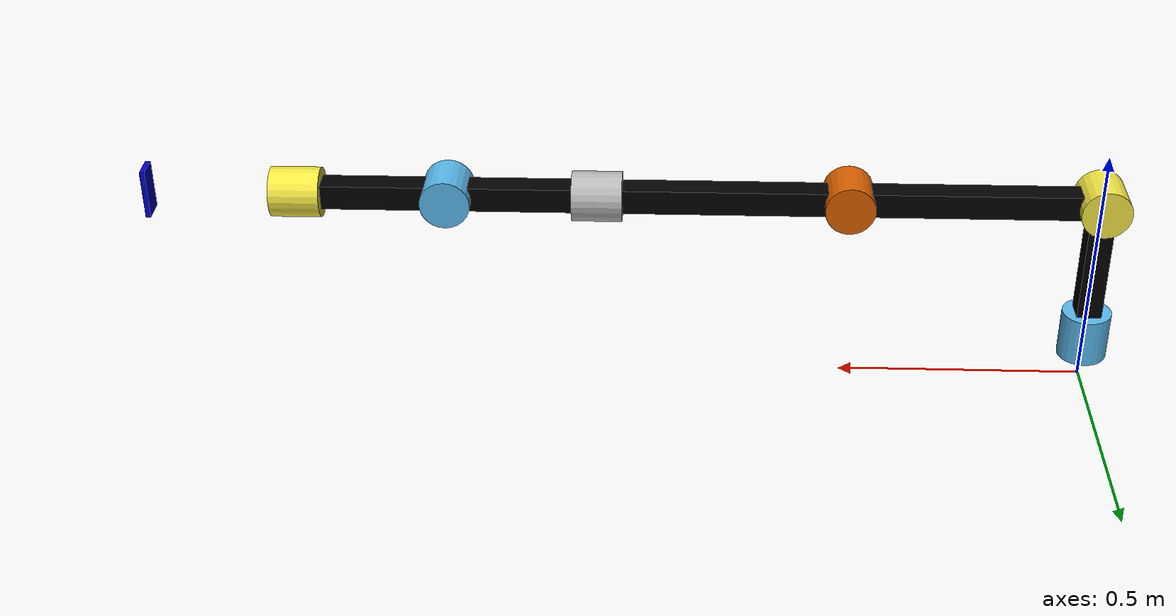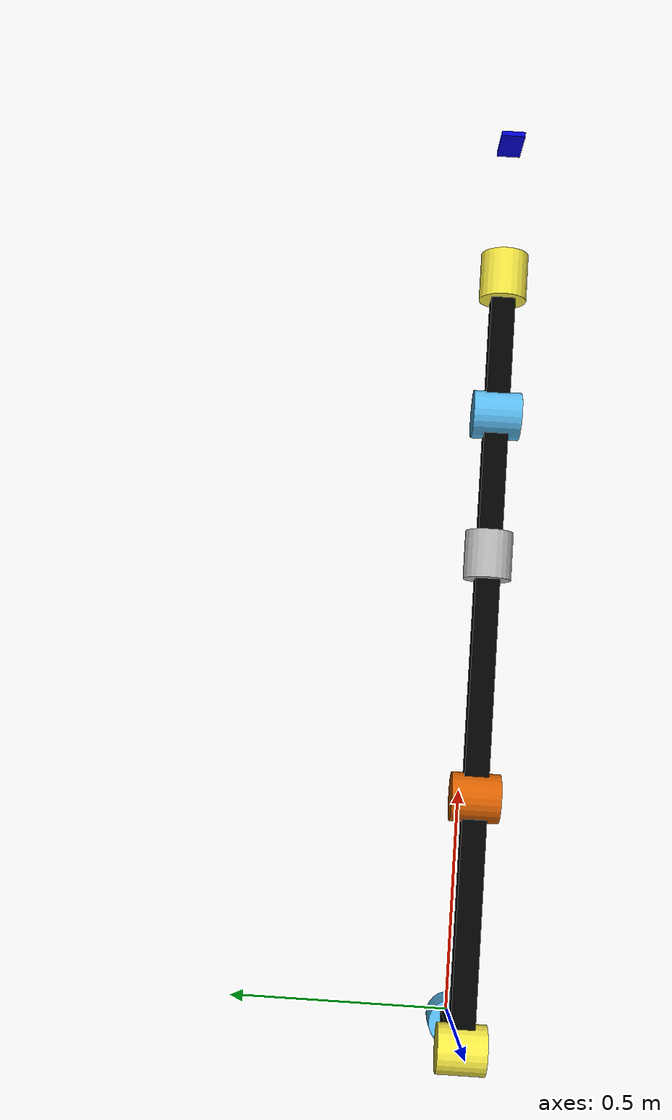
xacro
<?xml version="1.0"?>
<!-- Revolute-Revolute Manipulator -->
<robot name="my_robotic_arm" xmlns:xacro="http://www.ros.org/wiki/xacro">
    <material name="black">
        <color rgba="0.0 0.0 0.0 1.0"/>
    </material>

    <material name="blue">
        <color rgba="0.0 0.0 0.8 1.0"/>
    </material>

    <material name="green">
        <color rgba="0.0 0.8 0.0 1.0"/>
    </material>
    <material name="darkgreen">
        <color rgba="0.0 0.3 0.0 1.0"/>
    </material>

    <material name="gray">
        <color rgba="0.7 0.7 0.7 1.0"/>
    </material>

    <material name="darkgray">
        <color rgba="0.3 0.3 0.3 1.0"/>
    </material>

    <material name="red">
        <color rgba="0.8 0.0 0.0 1.0"/>
    </material>

    <material name="white">
        <color rgba="1.0 1.0 1.0 1.0"/>
    </material>

    <material name="yellow">
        <color rgba="0.8 0.8 0.0 1.0"/>
    </material>
    <!-- Constants -->
    <xacro:property name="deg_to_rad" value="0.01745329251994329577"/>
    <xacro:property name="M_PI" value="3.141592654"/>

    <xacro:property name="joint_radius" value="0.05"/>
    <xacro:property name="joint_height" value="0.1"/>

    <xacro:property name="width" value="0.05"/>
    <xacro:property name="l1" value="0.3"/>
    <xacro:property name="l2" value="0.5"/>
    <xacro:property name="l3" value="0.5"/>
    <xacro:property name="l4" value="0.3"/>
    <xacro:property name="l5" value="0.3"/>
    <xacro:property name="l6" value="0.3"/>

    <xacro:property name="end_ball_radius" value="0.025"/>

    <!-- Used for fixing robot to Gazebo 'link 1' -->
    <link name="world"/>
    <joint name="j1" type="revolute">
        <origin xyz="0 0 0.1" rpy="0 0 0"/>
        <parent link="world"/>
        <child link="joint1"/>
        <axis xyz="0 0 1"/>
        <limit velocity="5.0" effort="100" lower="${-pi*0.95}" upper="${pi*0.95}"/>
        <dynamics damping="0.7"/>
    </joint>
    <link name="joint1">
        <collision>
            <origin xyz="0 0 ${0/2}" rpy="0 0 0"/>
            <geometry>
                <cylinder length="${joint_height}" radius="${joint_radius}" />
            </geometry>
        </collision>
        <visual>
            <origin xyz="0 0 ${0/2}" rpy="0 0 0"/>
            <geometry>
                <cylinder length="${joint_height}" radius="${joint_radius}" />
            </geometry>
        </visual>
        <inertial>
            <origin xyz="0.0 0.00000 0.0" rpy="0 0 0"/>
            <mass value="0.5"/>
            <inertia ixx="1.0" ixy="0.0" ixz="0.0" iyy="1.0" iyz="0.0" izz="1.0" />
        </inertial>
    </link>
    <joint name="link1_fix" type="fixed">
        <origin xyz="0 0 0" rpy="0 0 0"/>
        <parent link="joint1"/>
        <child link="link1"/>
    </joint>
    <link name="link1">
        <collision>
            <origin xyz="0 0 ${l1/2}" rpy="0 0 0"/>
            <geometry>
                <box size="${width} ${width} ${l1}" />
            </geometry>
        </collision>
        <visual>
            <origin xyz="0 0 ${l1/2}" rpy="0 0 0"/>
            <geometry>
                <box size="${width} ${width} ${l1}"/>
            </geometry>
            <material name="black"/>
        </visual>
        <inertial>
            <origin xyz="0.0 0.00000 0.0" rpy="0 0 0"/>
            <mass value="0.5"/>
            <inertia ixx="1.0" ixy="0.0" ixz="0.0" iyy="1.0" iyz="0.0" izz="1.0" />
        </inertial>
    </link>

    <joint name="j2" type="revolute">
        <origin xyz="0 0 ${l1}" rpy="${0.5*pi} ${-0.0*pi} ${pi*0.0}"/>
        <parent link="joint1"/>
        <child link="joint2"/>
        <axis xyz="0 0 1 "/>
        <limit velocity="5.0" effort="100" lower="${-pi*0.95}" upper="${pi*0.95}"/>
        <dynamics damping="0.7"/>
    </joint>
    <link name="joint2">
        <collision>
            <origin xyz=" 0 0 ${0/2}" rpy="0 ${-pi*0} 0"/>
            <geometry>
                <cylinder length="${joint_height}" radius="${joint_radius}" />
            </geometry>
        </collision>
        <visual>
            <origin xyz="0 0 ${0/2} " rpy="0 ${-pi*0} 0"/>
            <geometry>
                <cylinder length="${joint_height}" radius="${joint_radius}" />
            </geometry>
        </visual>
        <inertial>
            <origin xyz="0.0 0.00000 0.0" rpy="0 0 0"/>
            <mass value="0.5"/>
            <inertia ixx="1.0" ixy="0.0" ixz="0.0" iyy="1.0" iyz="0.0" izz="1.0" />
        </inertial>
    </link>
    <joint name="link2_fix" type="fixed">
        <origin xyz="0 0 0" rpy="0 0 0"/>
        <parent link="joint2"/>
        <child link="link2"/>
    </joint>
    <link name="link2">
        <collision>
            <origin xyz="0 ${l2/2} 0 " rpy="0 0 0"/>
            <geometry>
                <box size="${width} ${l2} ${width}" />
            </geometry>
        </collision>
        <visual>
            <origin xyz="${l2/2} 0 0 " rpy="0 0 0"/>
            <geometry>
                <box size="${l2} ${width} ${width}"/>
            </geometry>
            <material name="black"/>
        </visual>
        <inertial>
            <origin xyz="0.0 0.00000 0.0" rpy="0 0 0"/>
            <mass value="0.5"/>
            <inertia ixx="1.0" ixy="0.0" ixz="0.0" iyy="1.0" iyz="0.0" izz="1.0" />
        </inertial>
    </link>

    <joint name="j3" type="revolute">
        <origin xyz="${l2} 0 0" rpy="${pi*0.0} ${pi*0.0} ${pi*0.0}"/>
        <parent link="joint2"/>
        <child link="joint3"/>
        <axis xyz="0 0 1"/>
        <limit velocity="5.0" effort="100" lower="${-pi*0.95}" upper="${pi*0.95}"/>
        <dynamics damping="0.7"/>
    </joint>
    <link name="joint3">
        <collision>
            <origin xyz="0 ${0/2} 0" rpy="0 ${-pi*0} 0"/>
            <geometry>
                <cylinder length="${joint_height}" radius="${joint_radius}" />
            </geometry>
        </collision>
        <visual>
            <origin xyz="0 ${0/2}  0" rpy="0 ${-pi*0} 0"/>
            <geometry>
                <cylinder length="${joint_height}" radius="${joint_radius}" />
            </geometry>
        </visual>
        <inertial>
            <origin xyz="0.0 0.00000 0.0" rpy="0 0 0"/>
            <mass value="0.5"/>
            <inertia ixx="1.0" ixy="0.0" ixz="0.0" iyy="1.0" iyz="0.0" izz="1.0" />
        </inertial>
    </link>
    <joint name="link3_fix" type="fixed">
        <origin xyz="0 0 0" rpy="0 0 0"/>
        <parent link="joint3"/>
        <child link="link3"/>
    </joint>
    <link name="link3">
        <collision>
            <origin xyz="${l3/2} 0 0 " rpy="0 0 0"/>
            <geometry>
                <box size="${l3} ${width} ${width}" />
            </geometry>
        </collision>
        <visual>
            <origin xyz="${l3/2} 0 0 " rpy="0 0 0"/>
            <geometry>
                <box size="${l3} ${width} ${width}"/>
            </geometry>
            <material name="black"/>
        </visual>
        <inertial>
            <origin xyz="0.0 0.00000 0.0" rpy="0 0 0"/>
            <mass value="0.5"/>
            <inertia ixx="1.0" ixy="0.0" ixz="0.0" iyy="1.0" iyz="0.0" izz="1.0" />
        </inertial>
    </link>

    <joint name="j4" type="revolute">
        <origin xyz="${l3} 0 0" rpy="${pi*0.5} ${pi*0} ${pi*0.5}"/>
        <parent link="joint3"/>
        <child link="joint4"/>
        <axis xyz="0 0 1"/>
        <limit velocity="5.0" effort="100" lower="${-pi*0.95}" upper="${pi*0.95}"/>
        <dynamics damping="0.7"/>
    </joint>
    <link name="joint4">
        <collision>
            <origin xyz="0 ${0/2} 0" rpy="${pi*0.0} ${pi*0.0} ${pi*0.0}"/>
            <geometry>
                <cylinder length="${joint_height}" radius="${joint_radius}" />
            </geometry>
        </collision>
        <visual>
            <origin xyz="0 ${0/2}  0" rpy="0 ${-pi*0} 0"/>
            <geometry>
                <cylinder length="${joint_height}" radius="${joint_radius}" />
            </geometry>
        </visual>
        <inertial>
            <origin xyz="0.0 0.00000 0.0" rpy="0 0 0"/>
            <mass value="0.5"/>
            <inertia ixx="1.0" ixy="0.0" ixz="0.0" iyy="1.0" iyz="0.0" izz="1.0" />
        </inertial>
    </link>
    <joint name="link4_fix" type="fixed">
        <origin xyz="0 0 0" rpy="0 0 0"/>
        <parent link="joint4"/>
        <child link="link4"/>
    </joint>
    <link name="link4">
        <collision>
            <origin xyz="0 0 ${l4/2}" rpy="0 0 0"/>
            <geometry>
                <box size="${width} ${width} ${l4} " />
            </geometry>
        </collision>
        <visual>
            <origin xyz="0 0 ${l4/2}" rpy="0 0 0"/>
            <geometry>
                <box size="${width} ${width} ${l4} "/>
            </geometry>
            <material name="black"/>
        </visual>
        <inertial>
            <origin xyz="0.0 0.00000 0.0" rpy="0 0 0"/>
            <mass value="0.5"/>
            <inertia ixx="1.0" ixy="0.0" ixz="0.0" iyy="1.0" iyz="0.0" izz="1.0" />
        </inertial>
    </link>

    <joint name="j5" type="revolute">
        <origin xyz="0 0 ${l4}" rpy="${-pi*0.5} ${pi*1} ${pi*0.0}"/>
        <parent link="joint4"/>
        <child link="joint5"/>
        <axis xyz="0 0 1"/>
        <limit velocity="5.0" effort="100" lower="${-pi*0.95}" upper="${pi*0.95}"/>
        <dynamics damping="0.7"/>
    </joint>
    <link name="joint5">
        <collision>
            <origin xyz="0 ${0/2} 0" rpy="${pi*0.0} ${pi*0.0} ${pi*0.0}"/>
            <geometry>
                <cylinder length="${joint_height}" radius="${joint_radius}" />
            </geometry>
        </collision>
        <visual>
            <origin xyz="0 ${0/2}  0" rpy="0 ${-pi*0} 0"/>
            <geometry>
                <cylinder length="${joint_height}" radius="${joint_radius}" />
            </geometry>
        </visual>
        <inertial>
            <origin xyz="0.0 0.00000 0.0" rpy="0 0 0"/>
            <mass value="0.5"/>
            <inertia ixx="1.0" ixy="0.0" ixz="0.0" iyy="1.0" iyz="0.0" izz="1.0" />
        </inertial>
    </link>
    <joint name="link5_fix" type="fixed">
        <origin xyz="0 0 0" rpy="0 0 0"/>
        <parent link="joint5"/>
        <child link="link5"/>
    </joint>
    <link name="link5">
        <collision>
            <origin xyz="0 ${l5/2} 0" rpy="0 0 0"/>
            <geometry>
                <box size="${width} ${l5} ${width}" />
            </geometry>
        </collision>
        <visual>
            <origin xyz="0 ${l5/2} 0" rpy="0 0 0"/>
            <geometry>
                <box size="${width} ${l5}  ${width}"/>
            </geometry>
            <material name="black"/>
        </visual>
        <inertial>
            <origin xyz="0.0 0.00000 0.0" rpy="0 0 0"/>
            <mass value="0.5"/>
            <inertia ixx="1.0" ixy="0.0" ixz="0.0" iyy="1.0" iyz="0.0" izz="1.0" />
        </inertial>
    </link>

    <joint name="j6" type="revolute">
        <origin xyz="0 ${l5} 0" rpy="${-pi*0.5} ${pi*1} ${pi*0.0}"/>
        <parent link="joint5"/>
        <child link="joint6"/>
        <axis xyz="0 0 1"/>
        <limit velocity="5.0" effort="100" lower="${-pi*0.75}" upper="${pi*0.75}"/>
        <dynamics damping="0.7"/>
    </joint>
    <link name="joint6">
        <collision>
            <origin xyz="0 ${0/2} 0" rpy="${pi*0.0} ${pi*0.0} ${pi*0.0}"/>
            <geometry>
                <cylinder length="${joint_height}" radius="${joint_radius}" />
            </geometry>
        </collision>
        <visual>
            <origin xyz="0 ${0/2}  0" rpy="0 ${-pi*0} 0"/>
            <geometry>
                <cylinder length="${joint_height}" radius="${joint_radius}" />
            </geometry>
        </visual>
        <inertial>
            <origin xyz="0.0 0.00000 0.0" rpy="0 0 0"/>
            <mass value="0.5"/>
            <inertia ixx="1.0" ixy="0.0" ixz="0.0" iyy="1.0" iyz="0.0" izz="1.0" />
        </inertial>
    </link>

    <joint name="link6_fix" type="fixed">
        <origin xyz="0 0 ${l6}" rpy="0 0 0"/>
        <parent link="joint6"/>
        <child link="link6"/>
    </joint>
    <link name="link6">
        <collision>
            <origin xyz="0 0 0" rpy="0 0 0"/>
            <geometry>
                <box size="0.1 0.05 0.01"/>
            </geometry>
        </collision>
        <visual>
            <origin xyz="0 0 0" rpy="0 0 0"/>
            <geometry>
                <box size="0.1 0.05 0.01"/>
            </geometry>
            <material name="blue"/>
        </visual>
        <inertial>
            <origin xyz="0.0 0.00000 0.0" rpy="0 0 0"/>
            <mass value="0.5"/>
            <inertia ixx="1.0" ixy="0.0" ixz="0.0" iyy="1.0" iyz="0.0" izz="1.0" />
        </inertial>
    </link>

    <gazebo reference="link1">
        <material>Gazebo/DarkGrey</material>
    </gazebo>
    <gazebo reference="link2">
        <material>Gazebo/FlatBlack</material>
    </gazebo>
    <gazebo reference="link3">
        <material>Gazebo/DarkGrey</material>
    </gazebo>
    <gazebo reference="link4">
        <material>Gazebo/FlatBlack</material>
    </gazebo>
    <gazebo reference="link5">
        <material>Gazebo/DarkGrey</material>
    </gazebo>
    <gazebo reference="link6">
        <material>Gazebo/FlatBlack</material>
    </gazebo>

    <transmission name="transmission">
        <type>transmission_interface/SimpleTransmission</type>
        <joint name="j1">
            <hardwareInterface>hardware_interface/EffortJointInterface</hardwareInterface>
        </joint>
        <actuator name="motor1">
            <hardwareInterface>hardware_interface/EffortJointInterface</hardwareInterface>
            <mechanicalReduction>1</mechanicalReduction>
        </actuator>
    </transmission>
    <transmission name="transmission">
        <type>transmission_interface/SimpleTransmission</type>
        <joint name="j2">
            <hardwareInterface>hardware_interface/EffortJointInterface</hardwareInterface>
        </joint>
        <actuator name="motor1">
            <hardwareInterface>hardware_interface/EffortJointInterface</hardwareInterface>
            <mechanicalReduction>1</mechanicalReduction>
        </actuator>
        </transmission>    <transmission name="transmission">
        <type>transmission_interface/SimpleTransmission</type>
        <joint name="j3">
            <hardwareInterface>hardware_interface/EffortJointInterface</hardwareInterface>
        </joint>
        <actuator name="motor1">
            <hardwareInterface>hardware_interface/EffortJointInterface</hardwareInterface>
            <mechanicalReduction>1</mechanicalReduction>
        </actuator>
    </transmission>

    <transmission name="transmission">
        <type>transmission_interface/SimpleTransmission</type>
        <joint name="j4">
            <hardwareInterface>hardware_interface/EffortJointInterface</hardwareInterface>
        </joint>
        <actuator name="motor1">
            <hardwareInterface>hardware_interface/EffortJointInterface</hardwareInterface>
            <mechanicalReduction>1</mechanicalReduction>
        </actuator>
    </transmission>
    <transmission name="transmission">
        <type>transmission_interface/SimpleTransmission</type>
        <joint name="j5">
            <hardwareInterface>hardware_interface/EffortJointInterface</hardwareInterface>
        </joint>
        <actuator name="motor1">
            <hardwareInterface>hardware_interface/EffortJointInterface</hardwareInterface>
            <mechanicalReduction>1</mechanicalReduction>
        </actuator>
        </transmission>    <transmission name="transmission">
        <type>transmission_interface/SimpleTransmission</type>
        <joint name="j6">
            <hardwareInterface>hardware_interface/EffortJointInterface</hardwareInterface>
        </joint>
        <actuator name="motor1">
            <hardwareInterface>hardware_interface/EffortJointInterface</hardwareInterface>
            <mechanicalReduction>1</mechanicalReduction>
        </actuator>
    </transmission>

    <gazebo>
        <plugin name="gazebo_ros_control" filename="libgazebo_ros_control.so">
            <robotNamespace>/my_robotic_arm</robotNamespace>
        </plugin>
    </gazebo>
</robot>
